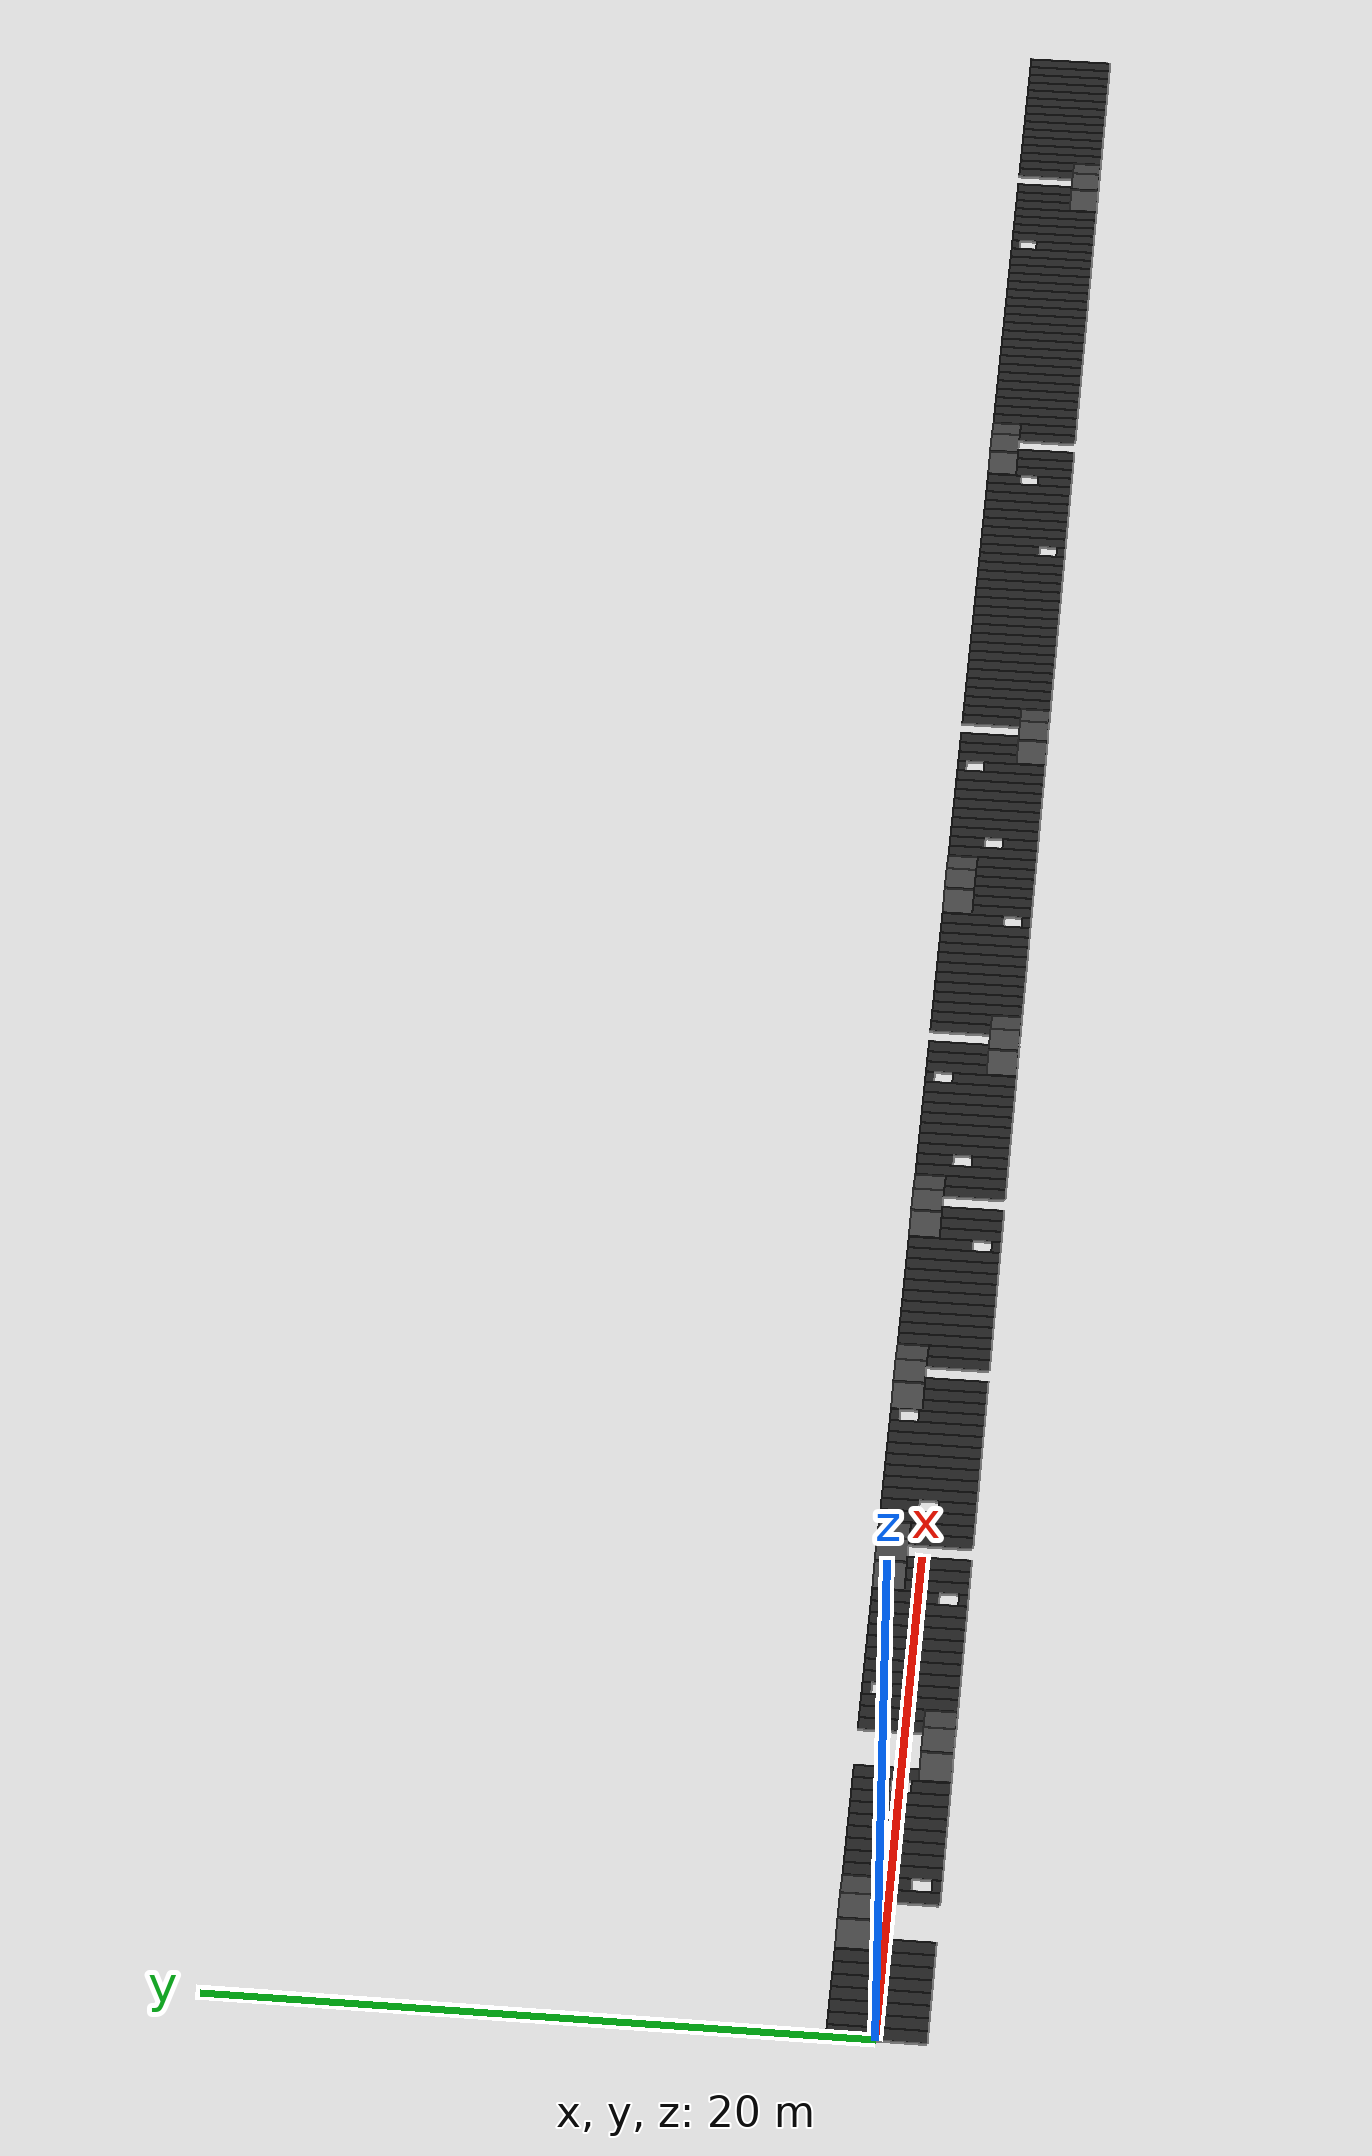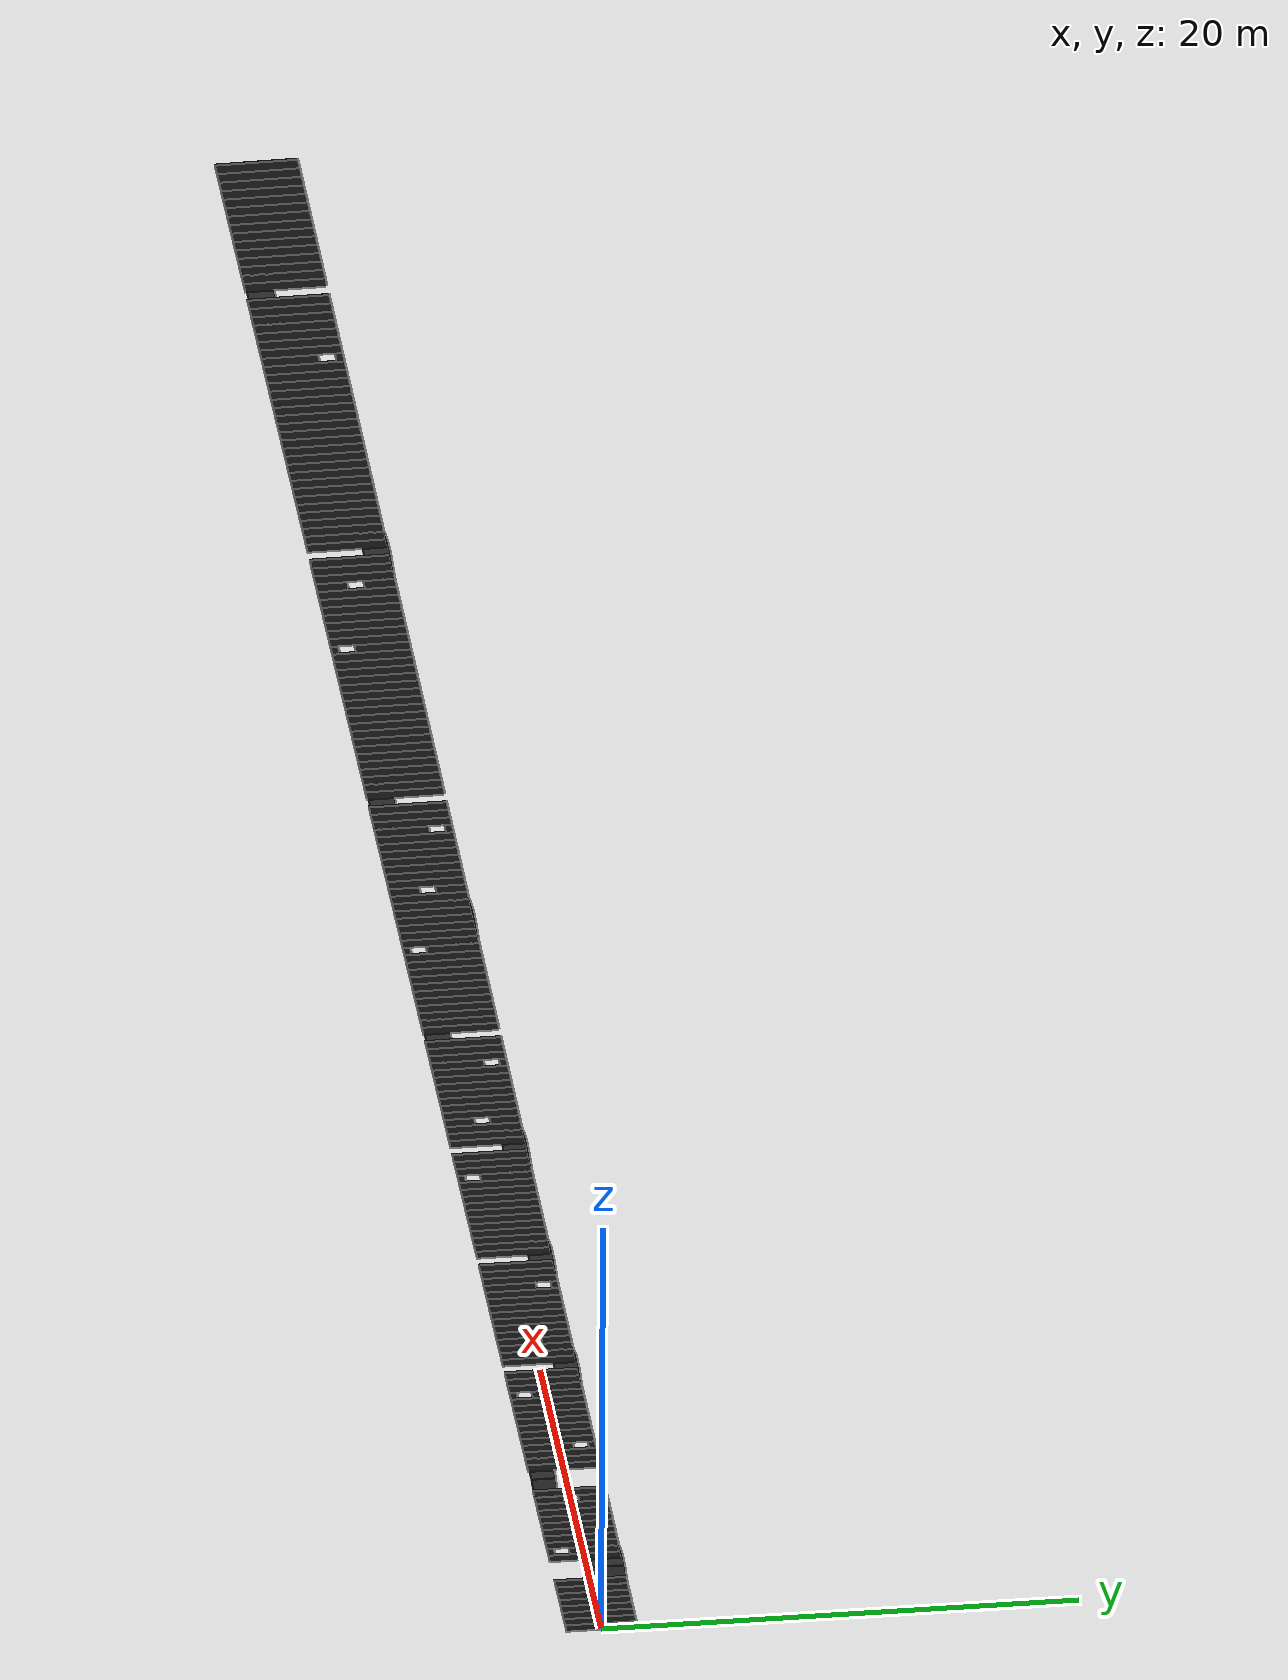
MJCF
<?xml version='1.0' encoding='utf-8'?>
<mujoco model="corridor_3x100">
  <compiler angle="degree" autolimits="true" />
  <option timestep="0.005" gravity="0 0 -9.81" />
  <size njmax="4000" nconmax="1000" />
<asset>
    <texture name="tex_grid" type="2d" builtin="checker" rgb1="0.1 0.1 0.1" rgb2="0.15 0.15 0.15" width="300" height="300" mark="edge" markrgb="0.8 0.8 0.8" />

    <texture name="tex_wall" type="2d" builtin="checker" rgb1="0.5 0.5 0.5" rgb2="0.55 0.55 0.55" width="300" height="300" />

    <material name="mat_floor" texture="tex_grid" texrepeat="2 2" specular="0.1" shininess="0.1" />

    <material name="mat_wall" texture="tex_wall" texrepeat="1 1" rgba="0.5 0.5 0.5 0" specular="0.3" shininess="0.3" />

    <material name="mat_bump" texture="tex_wall" rgba="0.5 0.5 0.5 1" specular="0.3" shininess="0.3" />
  </asset>
  <worldbody>
<light name="key_light" pos="4 4 4" dir="-1 -1 -1" directional="true" diffuse="1.1 1.1 1.1" specular="0.4 0.4 0.4" castshadow="true" />

<light name="fill_light" pos="-6 4 2" dir="1 -0.5 -1" directional="true" ambient="0.4 0.4 0.4" diffuse="0.6 0.6 0.6" specular="0.2 0.2 0.2" castshadow="false" />

    <geom name="wall_left" type="box" size="50.000 0.025 4.000" pos="50.000 -1.525 4.000" material="mat_wall" />
    <geom name="wall_right" type="box" size="50.000 0.025 4.000" pos="50.000 1.525 4.000" material="mat_wall" />
    <geom name="ramp_0" type="box" size="0.5 0.75 0.025" pos="4 0.75 0.15" euler="0 -15 0" material="mat_bump" />
    <geom name="ramp_1" type="box" size="0.5 0.75 0.025" pos="5 0.75 0.3" material="mat_bump" />
    <geom name="ramp_2" type="box" size="0.5 0.75 0.025" pos="6 0.75 0.15" euler="0 15 0" material="mat_bump" />

    <geom name="ramp_3" type="box" size="0.5 0.5 0.025" pos="11 -1 0.15" euler="0 -15 0" material="mat_bump" />
    <geom name="ramp_4" type="box" size="0.5 0.5 0.025" pos="12 -1 0.3" material="mat_bump" />
    <geom name="ramp_5" type="box" size="0.5 0.5 0.025" pos="13 -1 0.15" euler="0 15 0" material="mat_bump" />

    <geom name="ramp_6" type="box" size="0.5 0.5 0.025" pos="19 1 0.15" euler="0 -15 0" material="mat_bump" />
    <geom name="ramp_7" type="box" size="0.5 0.5 0.025" pos="20 1 0.3" material="mat_bump" />
    <geom name="ramp_8" type="box" size="0.5 0.5 0.025" pos="21 1 0.15" euler="0 15 0" material="mat_bump" />

    <geom name="ramp_9" type="box" size="0.5 0.5 0.025" pos="27 1 0.15" euler="0 -15 0" material="mat_bump" />
    <geom name="ramp_10" type="box" size="0.5 0.5 0.025" pos="28 1 0.3" material="mat_bump" />
    <geom name="ramp_11" type="box" size="0.5 0.5 0.025" pos="29 1 0.15" euler="0 15 0" material="mat_bump" />

    <geom name="ramp_12" type="box" size="0.5 0.5 0.025" pos="35 1 0.15" euler="0 -15 0" material="mat_bump" />
    <geom name="ramp_13" type="box" size="0.5 0.5 0.025" pos="36 1 0.3" material="mat_bump" />
    <geom name="ramp_14" type="box" size="0.5 0.5 0.025" pos="37 1 0.15" euler="0 15 0" material="mat_bump" />

    <geom name="ramp_15" type="box" size="0.5 0.5 0.025" pos="43 -1 0.15" euler="0 -15 0" material="mat_bump" />
    <geom name="ramp_16" type="box" size="0.5 0.5 0.025" pos="44 -1 0.3" material="mat_bump" />
    <geom name="ramp_17" type="box" size="0.5 0.5 0.025" pos="45 -1 0.15" euler="0 15 0" material="mat_bump" />

    <geom name="ramp_18" type="box" size="0.5 0.5 0.025" pos="51 1 0.15" euler="0 -15 0" material="mat_bump" />
    <geom name="ramp_19" type="box" size="0.5 0.5 0.025" pos="52 1 0.3" material="mat_bump" />
    <geom name="ramp_20" type="box" size="0.5 0.5 0.025" pos="53 1 0.15" euler="0 15 0" material="mat_bump" />

    <geom name="ramp_21" type="box" size="0.5 0.5 0.025" pos="59 -1 0.15" euler="0 -15 0" material="mat_bump" />
    <geom name="ramp_22" type="box" size="0.5 0.5 0.025" pos="60 -1 0.3" material="mat_bump" />
    <geom name="ramp_23" type="box" size="0.5 0.5 0.025" pos="61 -1 0.15" euler="0 15 0" material="mat_bump" />

    <geom name="ramp_24" type="box" size="0.5 0.5 0.025" pos="75 1 0.15" euler="0 -15 0" material="mat_bump" />
    <geom name="ramp_25" type="box" size="0.5 0.5 0.025" pos="76 1 0.3" material="mat_bump" />
    <geom name="ramp_26" type="box" size="0.5 0.5 0.025" pos="77 1 0.15" euler="0 15 0" material="mat_bump" />

    <geom name="ramp_27" type="box" size="0.5 0.5 0.025" pos="91 -1 0.15" euler="0 -15 0" material="mat_bump" />
    <geom name="ramp_28" type="box" size="0.5 0.5 0.025" pos="92 -1 0.3" material="mat_bump" />
    <geom name="ramp_29" type="box" size="0.5 0.5 0.025" pos="93 -1 0.15" euler="0 15 0" material="mat_bump" />
    <geom type="box" material="mat_floor" size="0.250 1.500 0.025" pos="0.250 0.000 0.025" name="flat_0" />
    <geom type="box" material="mat_floor" size="0.250 1.500 0.025" pos="0.750 0.000 0.025" name="flat_1" />
    <geom type="box" material="mat_floor" size="0.250 1.500 0.025" pos="1.250 0.000 0.025" name="flat_2" />
    <geom type="box" material="mat_floor" size="0.250 1.500 0.025" pos="1.750 0.000 0.025" name="flat_3" />
    <geom type="box" material="mat_floor" size="0.250 1.500 0.025" pos="2.250 0.000 0.025" name="flat_4" />

    <geom type="box" material="mat_floor" size="0.250 1.500 0.025" pos="2.750 0.000 0.025" name="flat_5" />
    <geom type="box" material="mat_floor" size="0.250 1.500 0.025" pos="3.250 0.000 0.025" name="flat_6" />

    <geom type="box" material="mat_floor" size="0.250 1.500 0.025" pos="3.750 0.000 0.025" name="flat_7" />

    <geom type="box" material="mat_floor" size="0.250 1.500 0.025" pos="5.750 0.000 0.025" name="flat_10" />
    <geom type="box" material="mat_floor" size="0.250 0.150 0.025" pos="6.250 -1.350 0.025" name="flat_11" />
    <geom type="box" material="mat_floor" size="0.250 1.050 0.025" pos="6.250 0.450 0.025" name="flat_12" />
    <geom type="box" material="mat_floor" size="0.250 1.500 0.025" pos="6.750 0.000 0.025" name="flat_13" />
    <geom type="box" material="mat_floor" size="0.250 1.500 0.025" pos="7.250 0.000 0.025" name="flat_14" />

    <geom type="box" material="mat_floor" size="0.250 1.500 0.025" pos="7.750 0.000 0.025" name="flat_15" />
    <geom type="box" material="mat_floor" size="0.250 1.500 0.025" pos="8.250 0.000 0.025" name="flat_16" />

    <geom type="box" material="mat_floor" size="0.250 1.500 0.025" pos="8.750 0.000 0.025" name="flat_17" />
    <geom type="box" material="mat_floor" size="0.250 1.500 0.025" pos="9.250 0.000 0.025" name="flat_18" />

    <geom type="box" material="mat_floor" size="0.250 1.500 0.025" pos="9.750 0.000 0.025" name="flat_19" />
    <geom type="box" material="mat_floor" size="0.250 0.600 0.025" pos="10.250 -0.900 0.025" name="flat_20" />
    <geom type="box" material="mat_floor" size="0.250 0.600 0.025" pos="10.250 0.900 0.025" name="flat_21" />
    <geom type="box" material="mat_floor" size="0.250 1.500 0.025" pos="10.750 0.000 0.025" name="flat_22" />

    <geom type="box" material="mat_floor" size="0.250 1.500 0.025" pos="12.750 0.000 0.025" name="flat_25" />
    <geom type="box" material="mat_floor" size="0.250 1.500 0.025" pos="13.250 0.000 0.025" name="flat_26" />

    <geom type="box" material="mat_floor" size="0.250 1.500 0.025" pos="13.750 0.000 0.025" name="flat_27" />
    <geom type="box" material="mat_floor" size="0.250 1.050 0.025" pos="14.250 -0.450 0.025" name="flat_28" />
    <geom type="box" material="mat_floor" size="0.250 0.150 0.025" pos="14.250 1.350 0.025" name="flat_29" />
    <geom type="box" material="mat_floor" size="0.250 1.500 0.025" pos="14.750 0.000 0.025" name="flat_30" />
    <geom type="box" material="mat_floor" size="0.250 1.500 0.025" pos="15.250 0.000 0.025" name="flat_31" />

    <geom type="box" material="mat_floor" size="0.250 1.500 0.025" pos="15.750 0.000 0.025" name="flat_32" />
    <geom type="box" material="mat_floor" size="0.250 1.500 0.025" pos="16.250 0.000 0.025" name="flat_33" />
    <geom type="box" material="mat_floor" size="0.250 1.500 0.025" pos="16.750 0.000 0.025" name="flat_34" />
    <geom type="box" material="mat_floor" size="0.250 1.500 0.025" pos="17.250 0.000 0.025" name="flat_35" />

    <geom type="box" material="mat_floor" size="0.250 1.500 0.025" pos="17.750 0.000 0.025" name="flat_36" />
    <geom type="box" material="mat_floor" size="0.250 0.150 0.025" pos="18.250 -1.350 0.025" name="flat_37" />
    <geom type="box" material="mat_floor" size="0.250 1.050 0.025" pos="18.250 0.450 0.025" name="flat_38" />
    <geom type="box" material="mat_floor" size="0.250 1.500 0.025" pos="18.750 0.000 0.025" name="flat_39" />
    <geom type="box" material="mat_floor" size="0.250 1.500 0.025" pos="19.250 0.000 0.025" name="flat_40" />

    <geom type="box" material="mat_floor" size="0.250 1.500 0.025" pos="19.750 0.000 0.025" name="flat_41" />
    <geom type="box" material="mat_floor" size="0.250 1.500 0.025" pos="20.750 0.000 0.025" name="flat_42" />
    <geom type="box" material="mat_floor" size="0.250 1.500 0.025" pos="21.250 0.000 0.025" name="flat_43" />

    <geom type="box" material="mat_floor" size="0.250 1.500 0.025" pos="21.750 0.000 0.025" name="flat_44" />
    <geom type="box" material="mat_floor" size="0.250 0.600 0.025" pos="22.250 -0.900 0.025" name="flat_45" />
    <geom type="box" material="mat_floor" size="0.250 0.600 0.025" pos="22.250 0.900 0.025" name="flat_46" />
    <geom type="box" material="mat_floor" size="0.250 1.500 0.025" pos="22.750 0.000 0.025" name="flat_47" />
    <geom type="box" material="mat_floor" size="0.250 1.500 0.025" pos="23.250 0.000 0.025" name="flat_48" />

    <geom type="box" material="mat_floor" size="0.250 1.500 0.025" pos="23.750 0.000 0.025" name="flat_49" />
    <geom type="box" material="mat_floor" size="0.250 1.500 0.025" pos="24.250 0.000 0.025" name="flat_50" />

    <geom type="box" material="mat_floor" size="0.250 1.500 0.025" pos="24.750 0.000 0.025" name="flat_51" />
    <geom type="box" material="mat_floor" size="0.250 1.500 0.025" pos="25.250 0.000 0.025" name="flat_52" />
    <geom type="box" material="mat_floor" size="0.250 1.500 0.025" pos="25.750 0.000 0.025" name="flat_53" />
    <geom type="box" material="mat_floor" size="0.250 1.050 0.025" pos="26.250 -0.450 0.025" name="flat_54" />
    <geom type="box" material="mat_floor" size="0.250 0.150 0.025" pos="26.250 1.350 0.025" name="flat_55" />
    <geom type="box" material="mat_floor" size="0.250 1.500 0.025" pos="26.750 0.000 0.025" name="flat_56" />
    <geom type="box" material="mat_floor" size="0.250 1.500 0.025" pos="27.250 0.000 0.025" name="flat_57" />

    <geom type="box" material="mat_floor" size="0.250 1.500 0.025" pos="27.750 0.000 0.025" name="flat_58" />
    <geom type="box" material="mat_floor" size="0.250 1.500 0.025" pos="28.750 0.000 0.025" name="flat_59" />
    <geom type="box" material="mat_floor" size="0.250 1.500 0.025" pos="29.250 0.000 0.025" name="flat_60" />

    <geom type="box" material="mat_floor" size="0.250 1.500 0.025" pos="29.750 0.000 0.025" name="flat_61" />
    <geom type="box" material="mat_floor" size="0.250 1.500 0.025" pos="30.250 0.000 0.025" name="flat_62" />
    <geom type="box" material="mat_floor" size="0.250 1.500 0.025" pos="30.750 0.000 0.025" name="flat_63" />
    <geom type="box" material="mat_floor" size="0.250 1.500 0.025" pos="31.250 0.000 0.025" name="flat_64" />

    <geom type="box" material="mat_floor" size="0.250 1.500 0.025" pos="31.750 0.000 0.025" name="flat_65" />
    <geom type="box" material="mat_floor" size="0.250 1.500 0.025" pos="32.250 0.000 0.025" name="flat_66" />
    <geom type="box" material="mat_floor" size="0.250 1.500 0.025" pos="32.750 0.000 0.025" name="flat_67" />
    <geom type="box" material="mat_floor" size="0.250 1.500 0.025" pos="33.250 0.000 0.025" name="flat_68" />

    <geom type="box" material="mat_floor" size="0.250 1.500 0.025" pos="33.750 0.000 0.025" name="flat_69" />
    <geom type="box" material="mat_floor" size="0.250 0.150 0.025" pos="34.250 -1.350 0.025" name="flat_70" />
    <geom type="box" material="mat_floor" size="0.250 1.050 0.025" pos="34.250 0.450 0.025" name="flat_71" />
    <geom type="box" material="mat_floor" size="0.250 1.500 0.025" pos="34.750 0.000 0.025" name="flat_72" />
    <geom type="box" material="mat_floor" size="0.250 1.500 0.025" pos="35.250 0.000 0.025" name="flat_73" />

    <geom type="box" material="mat_floor" size="0.250 1.500 0.025" pos="35.750 0.000 0.025" name="flat_74" />
    <geom type="box" material="mat_floor" size="0.250 1.500 0.025" pos="36.750 0.000 0.025" name="flat_75" />
    <geom type="box" material="mat_floor" size="0.250 1.500 0.025" pos="37.250 0.000 0.025" name="flat_76" />

    <geom type="box" material="mat_floor" size="0.250 1.500 0.025" pos="37.750 0.000 0.025" name="flat_77" />
    <geom type="box" material="mat_floor" size="0.250 0.600 0.025" pos="38.250 -0.900 0.025" name="flat_78" />
    <geom type="box" material="mat_floor" size="0.250 0.600 0.025" pos="38.250 0.900 0.025" name="flat_79" />
    <geom type="box" material="mat_floor" size="0.250 1.500 0.025" pos="38.750 0.000 0.025" name="flat_80" />
    <geom type="box" material="mat_floor" size="0.250 1.500 0.025" pos="39.250 0.000 0.025" name="flat_81" />

    <geom type="box" material="mat_floor" size="0.250 1.500 0.025" pos="39.750 0.000 0.025" name="flat_82" />
    <geom type="box" material="mat_floor" size="0.250 1.500 0.025" pos="40.250 0.000 0.025" name="flat_83" />

    <geom type="box" material="mat_floor" size="0.250 1.500 0.025" pos="40.750 0.000 0.025" name="flat_84" />
    <geom type="box" material="mat_floor" size="0.250 1.500 0.025" pos="41.250 0.000 0.025" name="flat_85" />

    <geom type="box" material="mat_floor" size="0.250 1.500 0.025" pos="41.750 0.000 0.025" name="flat_86" />
    <geom type="box" material="mat_floor" size="0.250 1.050 0.025" pos="42.250 -0.450 0.025" name="flat_87" />
    <geom type="box" material="mat_floor" size="0.250 0.150 0.025" pos="42.250 1.350 0.025" name="flat_88" />
    <geom type="box" material="mat_floor" size="0.250 1.500 0.025" pos="42.750 0.000 0.025" name="flat_89" />
    <geom type="box" material="mat_floor" size="0.250 1.500 0.025" pos="43.250 0.000 0.025" name="flat_90" />

    <geom type="box" material="mat_floor" size="0.250 1.500 0.025" pos="43.750 0.000 0.025" name="flat_91" />
    <geom type="box" material="mat_floor" size="0.250 1.500 0.025" pos="44.750 0.000 0.025" name="flat_92" />
    <geom type="box" material="mat_floor" size="0.250 1.500 0.025" pos="45.250 0.000 0.025" name="flat_93" />

    <geom type="box" material="mat_floor" size="0.250 1.500 0.025" pos="45.750 0.000 0.025" name="flat_94" />
    <geom type="box" material="mat_floor" size="0.250 1.500 0.025" pos="46.250 0.000 0.025" name="flat_95" />
    <geom type="box" material="mat_floor" size="0.250 1.500 0.025" pos="46.750 0.000 0.025" name="flat_96" />
    <geom type="box" material="mat_floor" size="0.250 1.500 0.025" pos="47.250 0.000 0.025" name="flat_97" />

    <geom type="box" material="mat_floor" size="0.250 1.500 0.025" pos="47.750 0.000 0.025" name="flat_98" />
    <geom type="box" material="mat_floor" size="0.250 1.500 0.025" pos="48.250 0.000 0.025" name="flat_99" />
    <geom type="box" material="mat_floor" size="0.250 1.500 0.025" pos="48.750 0.000 0.025" name="flat_100" />
    <geom type="box" material="mat_floor" size="0.250 1.500 0.025" pos="49.250 0.000 0.025" name="flat_101" />

    <geom type="box" material="mat_floor" size="0.250 1.500 0.025" pos="49.750 0.000 0.025" name="flat_102" />
    <geom type="box" material="mat_floor" size="0.250 0.150 0.025" pos="50.250 -1.350 0.025" name="flat_103" />
    <geom type="box" material="mat_floor" size="0.250 1.050 0.025" pos="50.250 0.450 0.025" name="flat_104" />
    <geom type="box" material="mat_floor" size="0.250 1.500 0.025" pos="50.750 0.000 0.025" name="flat_105" />
    <geom type="box" material="mat_floor" size="0.250 1.500 0.025" pos="51.250 0.000 0.025" name="flat_106" />

    <geom type="box" material="mat_floor" size="0.250 1.500 0.025" pos="51.750 0.000 0.025" name="flat_107" />
    <geom type="box" material="mat_floor" size="0.250 1.500 0.025" pos="52.250 0.000 0.025" name="flat_108" />
    <geom type="box" material="mat_floor" size="0.250 1.500 0.025" pos="52.750 0.000 0.025" name="flat_109" />
    <geom type="box" material="mat_floor" size="0.250 1.500 0.025" pos="53.250 0.000 0.025" name="flat_110" />

    <geom type="box" material="mat_floor" size="0.250 1.500 0.025" pos="53.750 0.000 0.025" name="flat_111" />
    <geom type="box" material="mat_floor" size="0.250 0.600 0.025" pos="54.250 -0.900 0.025" name="flat_112" />
    <geom type="box" material="mat_floor" size="0.250 0.600 0.025" pos="54.250 0.900 0.025" name="flat_113" />
    <geom type="box" material="mat_floor" size="0.250 1.500 0.025" pos="54.750 0.000 0.025" name="flat_114" />
    <geom type="box" material="mat_floor" size="0.250 1.500 0.025" pos="55.250 0.000 0.025" name="flat_115" />

    <geom type="box" material="mat_floor" size="0.250 1.500 0.025" pos="55.750 0.000 0.025" name="flat_116" />
    <geom type="box" material="mat_floor" size="0.250 1.500 0.025" pos="56.250 0.000 0.025" name="flat_117" />

    <geom type="box" material="mat_floor" size="0.250 1.500 0.025" pos="56.750 0.000 0.025" name="flat_118" />
    <geom type="box" material="mat_floor" size="0.250 1.500 0.025" pos="57.250 0.000 0.025" name="flat_119" />

    <geom type="box" material="mat_floor" size="0.250 1.500 0.025" pos="57.750 0.000 0.025" name="flat_120" />
    <geom type="box" material="mat_floor" size="0.250 1.050 0.025" pos="58.250 -0.450 0.025" name="flat_121" />
    <geom type="box" material="mat_floor" size="0.250 0.150 0.025" pos="58.250 1.350 0.025" name="flat_122" />
    <geom type="box" material="mat_floor" size="0.250 1.500 0.025" pos="58.750 0.000 0.025" name="flat_123" />
    <geom type="box" material="mat_floor" size="0.250 1.500 0.025" pos="59.250 0.000 0.025" name="flat_124" />

    <geom type="box" material="mat_floor" size="0.250 1.500 0.025" pos="59.750 0.000 0.025" name="flat_125" />
    <geom type="box" material="mat_floor" size="0.250 1.500 0.025" pos="60.750 0.000 0.025" name="flat_126" />
    <geom type="box" material="mat_floor" size="0.250 1.500 0.025" pos="61.250 0.000 0.025" name="flat_127" />

    <geom type="box" material="mat_floor" size="0.250 1.500 0.025" pos="61.750 0.000 0.025" name="flat_128" />
    <geom type="box" material="mat_floor" size="0.250 1.500 0.025" pos="62.250 0.000 0.025" name="flat_129" />
    <geom type="box" material="mat_floor" size="0.250 1.500 0.025" pos="62.750 0.000 0.025" name="flat_130" />
    <geom type="box" material="mat_floor" size="0.250 1.500 0.025" pos="63.250 0.000 0.025" name="flat_131" />

    <geom type="box" material="mat_floor" size="0.250 1.500 0.025" pos="63.750 0.000 0.025" name="flat_132" />
    <geom type="box" material="mat_floor" size="0.250 1.500 0.025" pos="64.250 0.000 0.025" name="flat_133" />
    <geom type="box" material="mat_floor" size="0.250 1.500 0.025" pos="64.750 0.000 0.025" name="flat_134" />
    <geom type="box" material="mat_floor" size="0.250 1.500 0.025" pos="65.250 0.000 0.025" name="flat_135" />

    <geom type="box" material="mat_floor" size="0.250 1.500 0.025" pos="65.750 0.000 0.025" name="flat_136" />
    <geom type="box" material="mat_floor" size="0.250 1.500 0.025" pos="66.250 0.000 0.025" name="flat_137" />
    <geom type="box" material="mat_floor" size="0.250 1.500 0.025" pos="66.750 0.000 0.025" name="flat_138" />
    <geom type="box" material="mat_floor" size="0.250 1.500 0.025" pos="67.250 0.000 0.025" name="flat_139" />

    <geom type="box" material="mat_floor" size="0.250 1.500 0.025" pos="67.750 0.000 0.025" name="flat_140" />
    <geom type="box" material="mat_floor" size="0.250 1.500 0.025" pos="68.250 0.000 0.025" name="flat_141" />
    <geom type="box" material="mat_floor" size="0.250 1.500 0.025" pos="68.750 0.000 0.025" name="flat_142" />
    <geom type="box" material="mat_floor" size="0.250 1.500 0.025" pos="69.250 0.000 0.025" name="flat_143" />

    <geom type="box" material="mat_floor" size="0.250 1.500 0.025" pos="69.750 0.000 0.025" name="flat_144" />
    <geom type="box" material="mat_floor" size="0.250 0.150 0.025" pos="70.250 -1.350 0.025" name="flat_145" />
    <geom type="box" material="mat_floor" size="0.250 1.050 0.025" pos="70.250 0.450 0.025" name="flat_146" />
    <geom type="box" material="mat_floor" size="0.250 1.500 0.025" pos="70.750 0.000 0.025" name="flat_147" />
    <geom type="box" material="mat_floor" size="0.250 1.500 0.025" pos="71.250 0.000 0.025" name="flat_148" />

    <geom type="box" material="mat_floor" size="0.250 1.500 0.025" pos="71.750 0.000 0.025" name="flat_149" />
    <geom type="box" material="mat_floor" size="0.250 1.500 0.025" pos="72.250 0.000 0.025" name="flat_150" />

    <geom type="box" material="mat_floor" size="0.250 1.500 0.025" pos="72.750 0.000 0.025" name="flat_151" />
    <geom type="box" material="mat_floor" size="0.250 1.500 0.025" pos="73.250 0.000 0.025" name="flat_152" />

    <geom type="box" material="mat_floor" size="0.250 1.500 0.025" pos="73.750 0.000 0.025" name="flat_153" />
    <geom type="box" material="mat_floor" size="0.250 0.600 0.025" pos="74.250 -0.900 0.025" name="flat_154" />
    <geom type="box" material="mat_floor" size="0.250 0.600 0.025" pos="74.250 0.900 0.025" name="flat_155" />
    <geom type="box" material="mat_floor" size="0.250 1.500 0.025" pos="74.750 0.000 0.025" name="flat_156" />
    <geom type="box" material="mat_floor" size="0.250 1.500 0.025" pos="75.250 0.000 0.025" name="flat_157" />

    <geom type="box" material="mat_floor" size="0.250 1.500 0.025" pos="75.750 0.000 0.025" name="flat_158" />
    <geom type="box" material="mat_floor" size="0.250 1.500 0.025" pos="76.750 0.000 0.025" name="flat_159" />
    <geom type="box" material="mat_floor" size="0.250 1.500 0.025" pos="77.250 0.000 0.025" name="flat_160" />

    <geom type="box" material="mat_floor" size="0.250 1.500 0.025" pos="77.750 0.000 0.025" name="flat_161" />
    <geom type="box" material="mat_floor" size="0.250 1.500 0.025" pos="78.250 0.000 0.025" name="flat_162" />
    <geom type="box" material="mat_floor" size="0.250 1.500 0.025" pos="78.750 0.000 0.025" name="flat_163" />
    <geom type="box" material="mat_floor" size="0.250 1.500 0.025" pos="79.250 0.000 0.025" name="flat_164" />

    <geom type="box" material="mat_floor" size="0.250 1.500 0.025" pos="79.750 0.000 0.025" name="flat_165" />
    <geom type="box" material="mat_floor" size="0.250 1.500 0.025" pos="80.250 0.000 0.025" name="flat_166" />
    <geom type="box" material="mat_floor" size="0.250 1.500 0.025" pos="80.750 0.000 0.025" name="flat_167" />
    <geom type="box" material="mat_floor" size="0.250 1.500 0.025" pos="81.250 0.000 0.025" name="flat_168" />

    <geom type="box" material="mat_floor" size="0.250 1.500 0.025" pos="81.750 0.000 0.025" name="flat_169" />
    <geom type="box" material="mat_floor" size="0.250 1.500 0.025" pos="82.250 0.000 0.025" name="flat_170" />
    <geom type="box" material="mat_floor" size="0.250 1.500 0.025" pos="82.750 0.000 0.025" name="flat_171" />
    <geom type="box" material="mat_floor" size="0.250 1.500 0.025" pos="83.250 0.000 0.025" name="flat_172" />

    <geom type="box" material="mat_floor" size="0.250 1.500 0.025" pos="83.750 0.000 0.025" name="flat_173" />
    <geom type="box" material="mat_floor" size="0.250 1.500 0.025" pos="84.250 0.000 0.025" name="flat_174" />

    <geom type="box" material="mat_floor" size="0.250 1.500 0.025" pos="84.750 0.000 0.025" name="flat_175" />
    <geom type="box" material="mat_floor" size="0.250 1.500 0.025" pos="85.250 0.000 0.025" name="flat_176" />

    <geom type="box" material="mat_floor" size="0.250 1.500 0.025" pos="85.750 0.000 0.025" name="flat_177" />
    <geom type="box" material="mat_floor" size="0.250 1.500 0.025" pos="86.250 0.000 0.025" name="flat_178" />
    <geom type="box" material="mat_floor" size="0.250 1.500 0.025" pos="86.750 0.000 0.025" name="flat_179" />
    <geom type="box" material="mat_floor" size="0.250 1.500 0.025" pos="87.250 0.000 0.025" name="flat_180" />

    <geom type="box" material="mat_floor" size="0.250 1.500 0.025" pos="87.750 0.000 0.025" name="flat_181" />
    <geom type="box" material="mat_floor" size="0.250 1.050 0.025" pos="88.250 -0.450 0.025" name="flat_182" />
    <geom type="box" material="mat_floor" size="0.250 0.150 0.025" pos="88.250 1.350 0.025" name="flat_183" />
    <geom type="box" material="mat_floor" size="0.250 1.500 0.025" pos="88.750 0.000 0.025" name="flat_184" />
    <geom type="box" material="mat_floor" size="0.250 1.500 0.025" pos="89.250 0.000 0.025" name="flat_185" />

    <geom type="box" material="mat_floor" size="0.250 1.500 0.025" pos="89.750 0.000 0.025" name="flat_186" />
    <geom type="box" material="mat_floor" size="0.250 1.500 0.025" pos="90.250 0.000 0.025" name="flat_187" />
    <geom type="box" material="mat_floor" size="0.250 1.500 0.025" pos="90.750 0.000 0.025" name="flat_188" />
    <geom type="box" material="mat_floor" size="0.250 1.500 0.025" pos="91.250 0.000 0.025" name="flat_189" />

    <geom type="box" material="mat_floor" size="0.250 1.500 0.025" pos="91.750 0.000 0.025" name="flat_190" />
    <geom type="box" material="mat_floor" size="0.250 1.500 0.025" pos="92.750 0.000 0.025" name="flat_191" />
    <geom type="box" material="mat_floor" size="0.250 1.500 0.025" pos="93.250 0.000 0.025" name="flat_192" />

    <geom type="box" material="mat_floor" size="0.250 1.500 0.025" pos="93.750 0.000 0.025" name="flat_193" />
    <geom type="box" material="mat_floor" size="0.250 1.500 0.025" pos="94.250 0.000 0.025" name="flat_194" />
    <geom type="box" material="mat_floor" size="0.250 1.500 0.025" pos="94.750 0.000 0.025" name="flat_195" />
    <geom type="box" material="mat_floor" size="0.250 1.500 0.025" pos="95.250 0.000 0.025" name="flat_196" />

    <geom type="box" material="mat_floor" size="0.250 1.500 0.025" pos="95.750 0.000 0.025" name="flat_197" />
    <geom type="box" material="mat_floor" size="0.250 1.500 0.025" pos="96.250 0.000 0.025" name="flat_198" />
    <geom type="box" material="mat_floor" size="0.250 1.500 0.025" pos="96.750 0.000 0.025" name="flat_199" />
    <geom type="box" material="mat_floor" size="0.250 1.500 0.025" pos="97.250 0.000 0.025" name="flat_200" />

    <geom type="box" material="mat_floor" size="0.250 1.500 0.025" pos="97.750 0.000 0.025" name="flat_201" />
    <geom type="box" material="mat_floor" size="0.250 1.500 0.025" pos="98.250 0.000 0.025" name="flat_202" />
    <geom type="box" material="mat_floor" size="0.250 1.500 0.025" pos="98.750 0.000 0.025" name="flat_203" />
    <geom type="box" material="mat_floor" size="0.250 1.500 0.025" pos="99.250 0.000 0.025" name="flat_204" />

    <geom type="box" material="mat_floor" size="0.250 1.500 0.025" pos="99.750 0.000 0.025" name="flat_205" />
  </worldbody>
</mujoco>
